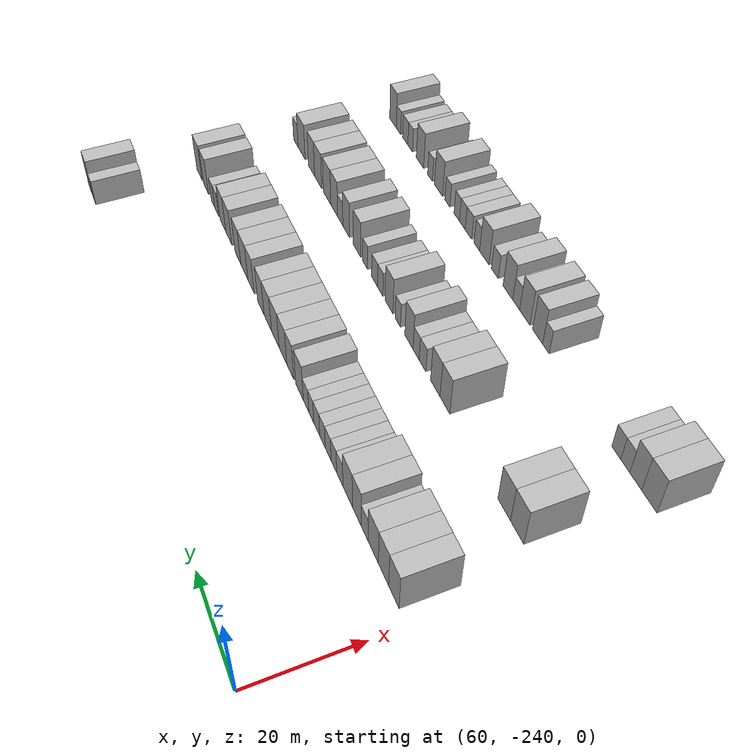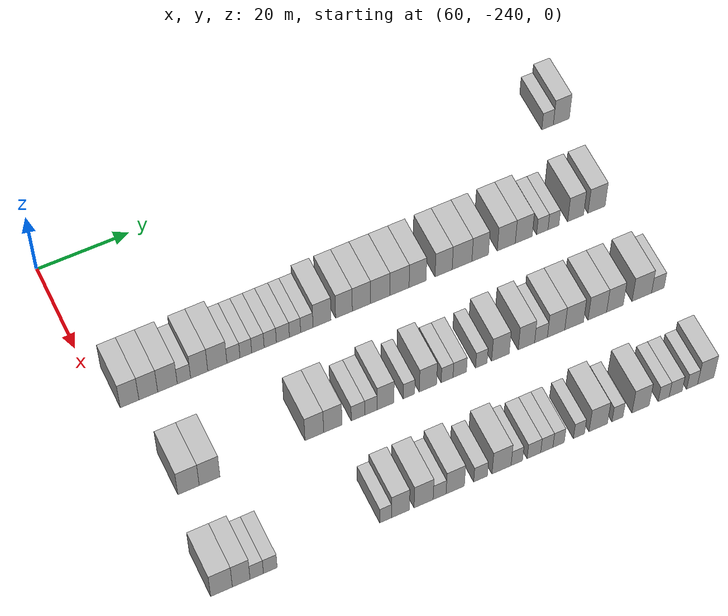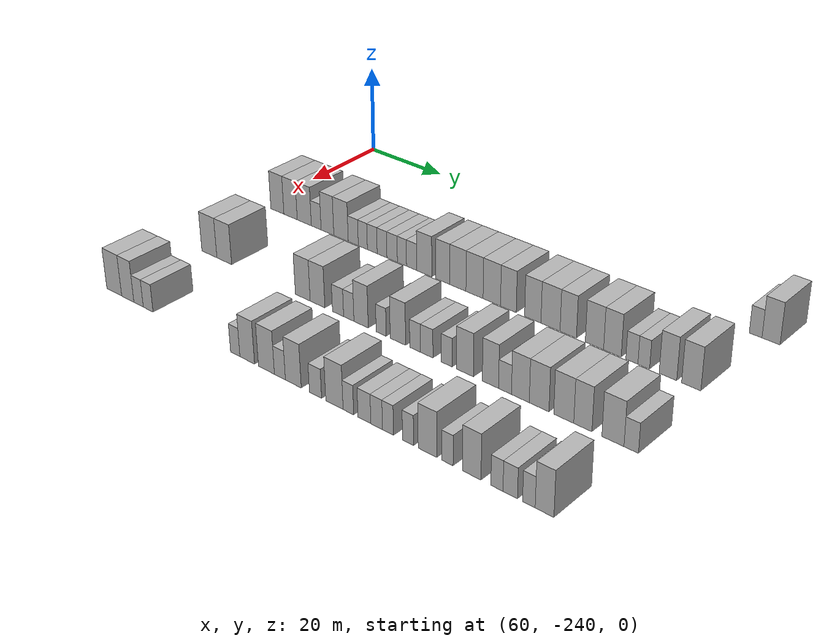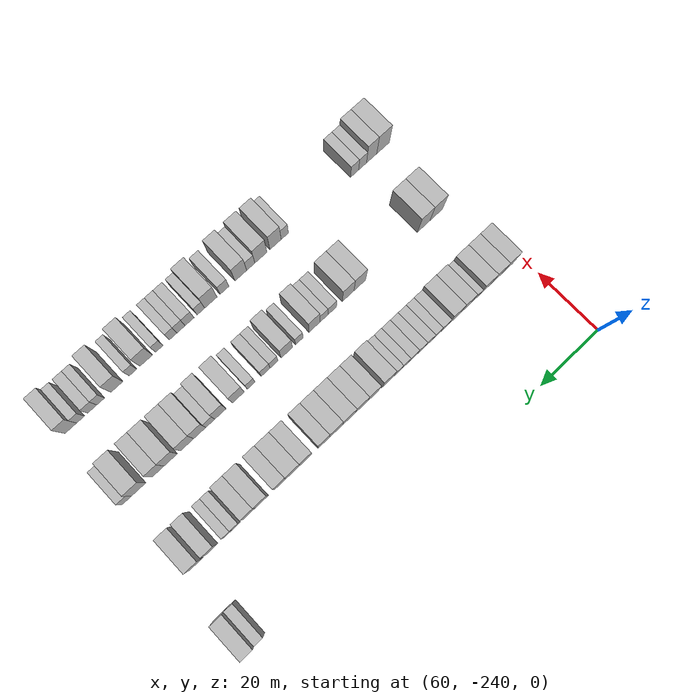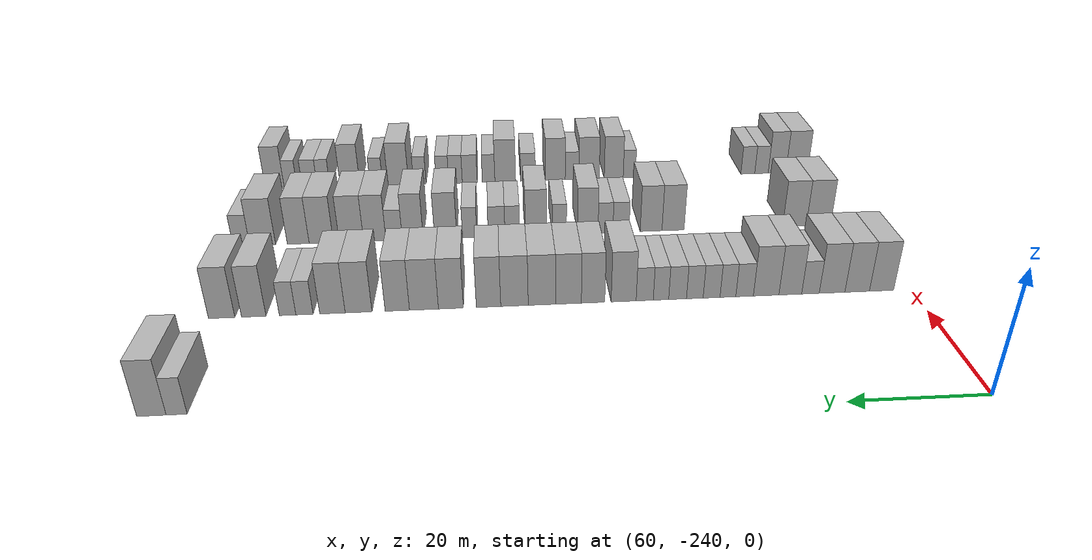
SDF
<sdf version="1.6">
 <world name="default">
  <model name="building_441">
   <static>1</static>
   <pose>69.0000 -131.8453 0 0.000000 0.000000 0.000000</pose>
   <link name="link">
    <pose>0 0 3.00 0 0 0</pose>
    <collision name="collision"><geometry><box><size>10.0000 2.6734 6.0000</size></box></geometry></collision>
    <visual name="visual">
     <cast_shadows>0</cast_shadows>
     <geometry><box><size>10.0000 2.6734 6.0000</size></box></geometry>
     <material>
      <script>
       <uri>model://HANNAS_wall/materials/scripts</uri>
       <uri>model://HANNAS_wall/materials/textures</uri>
       <name>vrc/HANNAS_wall</name>
      </script>
     </material>
    </visual>
   </link>
  </model>
  <model name="building_442">
   <static>1</static>
   <pose>69.0000 -128.6411 0 0.000000 0.000000 0.000000</pose>
   <link name="link">
    <pose>0 0 4.50 0 0 0</pose>
    <collision name="collision"><geometry><box><size>10.0000 3.7351 9.0000</size></box></geometry></collision>
    <visual name="visual">
     <cast_shadows>0</cast_shadows>
     <geometry><box><size>10.0000 3.7351 9.0000</size></box></geometry>
     <material>
      <script>
       <uri>model://HANNAS_wall/materials/scripts</uri>
       <uri>model://HANNAS_wall/materials/textures</uri>
       <name>vrc/HANNAS_wall</name>
      </script>
     </material>
    </visual>
   </link>
  </model>
  <model name="building_607">
   <static>1</static>
   <pose>91.0000 -235.0657 0 0.000000 0.000000 0.000000</pose>
   <link name="link">
    <pose>0 0 4.50 0 0 0</pose>
    <collision name="collision"><geometry><box><size>10.0000 3.9726 9.0000</size></box></geometry></collision>
    <visual name="visual">
     <cast_shadows>0</cast_shadows>
     <geometry><box><size>10.0000 3.9726 9.0000</size></box></geometry>
     <material>
      <script>
       <uri>model://HANNAS_wall/materials/scripts</uri>
       <uri>model://HANNAS_wall/materials/textures</uri>
       <name>vrc/HANNAS_wall</name>
      </script>
     </material>
    </visual>
   </link>
  </model>
  <model name="building_608">
   <static>1</static>
   <pose>91.0000 -231.0816 0 0.000000 0.000000 0.000000</pose>
   <link name="link">
    <pose>0 0 4.50 0 0 0</pose>
    <collision name="collision"><geometry><box><size>10.0000 3.9954 9.0000</size></box></geometry></collision>
    <visual name="visual">
     <cast_shadows>0</cast_shadows>
     <geometry><box><size>10.0000 3.9954 9.0000</size></box></geometry>
     <material>
      <script>
       <uri>model://HANNAS_wall/materials/scripts</uri>
       <uri>model://HANNAS_wall/materials/textures</uri>
       <name>vrc/HANNAS_wall</name>
      </script>
     </material>
    </visual>
   </link>
  </model>
  <model name="building_609">
   <static>1</static>
   <pose>91.0000 -226.9989 0 0.000000 0.000000 0.000000</pose>
   <link name="link">
    <pose>0 0 4.50 0 0 0</pose>
    <collision name="collision"><geometry><box><size>10.0000 4.1700 9.0000</size></box></geometry></collision>
    <visual name="visual">
     <cast_shadows>0</cast_shadows>
     <geometry><box><size>10.0000 4.1700 9.0000</size></box></geometry>
     <material>
      <script>
       <uri>model://HANNAS_wall/materials/scripts</uri>
       <uri>model://HANNAS_wall/materials/textures</uri>
       <name>vrc/HANNAS_wall</name>
      </script>
     </material>
    </visual>
   </link>
  </model>
  <model name="building_610">
   <static>1</static>
   <pose>91.0000 -223.4864 0 0.000000 0.000000 0.000000</pose>
   <link name="link">
    <pose>0 0 3.00 0 0 0</pose>
    <collision name="collision"><geometry><box><size>10.0000 2.8550 6.0000</size></box></geometry></collision>
    <visual name="visual">
     <cast_shadows>0</cast_shadows>
     <geometry><box><size>10.0000 2.8550 6.0000</size></box></geometry>
     <material>
      <script>
       <uri>model://HANNAS_wall/materials/scripts</uri>
       <uri>model://HANNAS_wall/materials/textures</uri>
       <name>vrc/HANNAS_wall</name>
      </script>
     </material>
    </visual>
   </link>
  </model>
  <model name="building_611">
   <static>1</static>
   <pose>91.0000 -220.2215 0 0.000000 0.000000 0.000000</pose>
   <link name="link">
    <pose>0 0 4.50 0 0 0</pose>
    <collision name="collision"><geometry><box><size>10.0000 3.6748 9.0000</size></box></geometry></collision>
    <visual name="visual">
     <cast_shadows>0</cast_shadows>
     <geometry><box><size>10.0000 3.6748 9.0000</size></box></geometry>
     <material>
      <script>
       <uri>model://HANNAS_wall/materials/scripts</uri>
       <uri>model://HANNAS_wall/materials/textures</uri>
       <name>vrc/HANNAS_wall</name>
      </script>
     </material>
    </visual>
   </link>
  </model>
  <model name="building_612">
   <static>1</static>
   <pose>91.0000 -216.3267 0 0.000000 0.000000 0.000000</pose>
   <link name="link">
    <pose>0 0 4.50 0 0 0</pose>
    <collision name="collision"><geometry><box><size>10.0000 4.1147 9.0000</size></box></geometry></collision>
    <visual name="visual">
     <cast_shadows>0</cast_shadows>
     <geometry><box><size>10.0000 4.1147 9.0000</size></box></geometry>
     <material>
      <script>
       <uri>model://HANNAS_wall/materials/scripts</uri>
       <uri>model://HANNAS_wall/materials/textures</uri>
       <name>vrc/HANNAS_wall</name>
      </script>
     </material>
    </visual>
   </link>
  </model>
  <model name="building_613">
   <static>1</static>
   <pose>91.0000 -212.8610 0 0.000000 0.000000 0.000000</pose>
   <link name="link">
    <pose>0 0 3.00 0 0 0</pose>
    <collision name="collision"><geometry><box><size>10.0000 2.8169 6.0000</size></box></geometry></collision>
    <visual name="visual">
     <cast_shadows>0</cast_shadows>
     <geometry><box><size>10.0000 2.8169 6.0000</size></box></geometry>
     <material>
      <script>
       <uri>model://HANNAS_wall/materials/scripts</uri>
       <uri>model://HANNAS_wall/materials/textures</uri>
       <name>vrc/HANNAS_wall</name>
      </script>
     </material>
    </visual>
   </link>
  </model>
  <model name="building_614">
   <static>1</static>
   <pose>91.0000 -210.1880 0 0.000000 0.000000 0.000000</pose>
   <link name="link">
    <pose>0 0 3.00 0 0 0</pose>
    <collision name="collision"><geometry><box><size>10.0000 2.5291 6.0000</size></box></geometry></collision>
    <visual name="visual">
     <cast_shadows>0</cast_shadows>
     <geometry><box><size>10.0000 2.5291 6.0000</size></box></geometry>
     <material>
      <script>
       <uri>model://HANNAS_wall/materials/scripts</uri>
       <uri>model://HANNAS_wall/materials/textures</uri>
       <name>vrc/HANNAS_wall</name>
      </script>
     </material>
    </visual>
   </link>
  </model>
  <model name="building_615">
   <static>1</static>
   <pose>91.0000 -207.5753 0 0.000000 0.000000 0.000000</pose>
   <link name="link">
    <pose>0 0 3.00 0 0 0</pose>
    <collision name="collision"><geometry><box><size>10.0000 2.6962 6.0000</size></box></geometry></collision>
    <visual name="visual">
     <cast_shadows>0</cast_shadows>
     <geometry><box><size>10.0000 2.6962 6.0000</size></box></geometry>
     <material>
      <script>
       <uri>model://HANNAS_wall/materials/scripts</uri>
       <uri>model://HANNAS_wall/materials/textures</uri>
       <name>vrc/HANNAS_wall</name>
      </script>
     </material>
    </visual>
   </link>
  </model>
  <model name="building_616">
   <static>1</static>
   <pose>91.0000 -204.9009 0 0.000000 0.000000 0.000000</pose>
   <link name="link">
    <pose>0 0 3.00 0 0 0</pose>
    <collision name="collision"><geometry><box><size>10.0000 2.6526 6.0000</size></box></geometry></collision>
    <visual name="visual">
     <cast_shadows>0</cast_shadows>
     <geometry><box><size>10.0000 2.6526 6.0000</size></box></geometry>
     <material>
      <script>
       <uri>model://HANNAS_wall/materials/scripts</uri>
       <uri>model://HANNAS_wall/materials/textures</uri>
       <name>vrc/HANNAS_wall</name>
      </script>
     </material>
    </visual>
   </link>
  </model>
  <model name="building_617">
   <static>1</static>
   <pose>91.0000 -202.1593 0 0.000000 0.000000 0.000000</pose>
   <link name="link">
    <pose>0 0 3.00 0 0 0</pose>
    <collision name="collision"><geometry><box><size>10.0000 2.8307 6.0000</size></box></geometry></collision>
    <visual name="visual">
     <cast_shadows>0</cast_shadows>
     <geometry><box><size>10.0000 2.8307 6.0000</size></box></geometry>
     <material>
      <script>
       <uri>model://HANNAS_wall/materials/scripts</uri>
       <uri>model://HANNAS_wall/materials/textures</uri>
       <name>vrc/HANNAS_wall</name>
      </script>
     </material>
    </visual>
   </link>
  </model>
  <model name="building_618">
   <static>1</static>
   <pose>91.0000 -199.5231 0 0.000000 0.000000 0.000000</pose>
   <link name="link">
    <pose>0 0 3.00 0 0 0</pose>
    <collision name="collision"><geometry><box><size>10.0000 2.4417 6.0000</size></box></geometry></collision>
    <visual name="visual">
     <cast_shadows>0</cast_shadows>
     <geometry><box><size>10.0000 2.4417 6.0000</size></box></geometry>
     <material>
      <script>
       <uri>model://HANNAS_wall/materials/scripts</uri>
       <uri>model://HANNAS_wall/materials/textures</uri>
       <name>vrc/HANNAS_wall</name>
      </script>
     </material>
    </visual>
   </link>
  </model>
  <model name="building_619">
   <static>1</static>
   <pose>91.0000 -196.9463 0 0.000000 0.000000 0.000000</pose>
   <link name="link">
    <pose>0 0 3.00 0 0 0</pose>
    <collision name="collision"><geometry><box><size>10.0000 2.7120 6.0000</size></box></geometry></collision>
    <visual name="visual">
     <cast_shadows>0</cast_shadows>
     <geometry><box><size>10.0000 2.7120 6.0000</size></box></geometry>
     <material>
      <script>
       <uri>model://HANNAS_wall/materials/scripts</uri>
       <uri>model://HANNAS_wall/materials/textures</uri>
       <name>vrc/HANNAS_wall</name>
      </script>
     </material>
    </visual>
   </link>
  </model>
  <model name="building_620">
   <static>1</static>
   <pose>91.0000 -193.6202 0 0.000000 0.000000 0.000000</pose>
   <link name="link">
    <pose>0 0 4.50 0 0 0</pose>
    <collision name="collision"><geometry><box><size>10.0000 3.9400 9.0000</size></box></geometry></collision>
    <visual name="visual">
     <cast_shadows>0</cast_shadows>
     <geometry><box><size>10.0000 3.9400 9.0000</size></box></geometry>
     <material>
      <script>
       <uri>model://HANNAS_wall/materials/scripts</uri>
       <uri>model://HANNAS_wall/materials/textures</uri>
       <name>vrc/HANNAS_wall</name>
      </script>
     </material>
    </visual>
   </link>
  </model>
  <model name="building_621">
   <static>1</static>
   <pose>91.0000 -188.8131 0 0.000000 0.000000 0.000000</pose>
   <link name="link">
    <pose>0 0 4.50 0 0 0</pose>
    <collision name="collision"><geometry><box><size>10.0000 3.6743 9.0000</size></box></geometry></collision>
    <visual name="visual">
     <cast_shadows>0</cast_shadows>
     <geometry><box><size>10.0000 3.6743 9.0000</size></box></geometry>
     <material>
      <script>
       <uri>model://HANNAS_wall/materials/scripts</uri>
       <uri>model://HANNAS_wall/materials/textures</uri>
       <name>vrc/HANNAS_wall</name>
      </script>
     </material>
    </visual>
   </link>
  </model>
  <model name="building_622">
   <static>1</static>
   <pose>91.0000 -184.9617 0 0.000000 0.000000 0.000000</pose>
   <link name="link">
    <pose>0 0 4.50 0 0 0</pose>
    <collision name="collision"><geometry><box><size>10.0000 4.0285 9.0000</size></box></geometry></collision>
    <visual name="visual">
     <cast_shadows>0</cast_shadows>
     <geometry><box><size>10.0000 4.0285 9.0000</size></box></geometry>
     <material>
      <script>
       <uri>model://HANNAS_wall/materials/scripts</uri>
       <uri>model://HANNAS_wall/materials/textures</uri>
       <name>vrc/HANNAS_wall</name>
      </script>
     </material>
    </visual>
   </link>
  </model>
  <model name="building_623">
   <static>1</static>
   <pose>91.0000 -180.8147 0 0.000000 0.000000 0.000000</pose>
   <link name="link">
    <pose>0 0 4.50 0 0 0</pose>
    <collision name="collision"><geometry><box><size>10.0000 4.2655 9.0000</size></box></geometry></collision>
    <visual name="visual">
     <cast_shadows>0</cast_shadows>
     <geometry><box><size>10.0000 4.2655 9.0000</size></box></geometry>
     <material>
      <script>
       <uri>model://HANNAS_wall/materials/scripts</uri>
       <uri>model://HANNAS_wall/materials/textures</uri>
       <name>vrc/HANNAS_wall</name>
      </script>
     </material>
    </visual>
   </link>
  </model>
  <model name="building_624">
   <static>1</static>
   <pose>91.0000 -176.5502 0 0.000000 0.000000 0.000000</pose>
   <link name="link">
    <pose>0 0 4.50 0 0 0</pose>
    <collision name="collision"><geometry><box><size>10.0000 4.2636 9.0000</size></box></geometry></collision>
    <visual name="visual">
     <cast_shadows>0</cast_shadows>
     <geometry><box><size>10.0000 4.2636 9.0000</size></box></geometry>
     <material>
      <script>
       <uri>model://HANNAS_wall/materials/scripts</uri>
       <uri>model://HANNAS_wall/materials/textures</uri>
       <name>vrc/HANNAS_wall</name>
      </script>
     </material>
    </visual>
   </link>
  </model>
  <model name="building_625">
   <static>1</static>
   <pose>91.0000 -172.5279 0 0.000000 0.000000 0.000000</pose>
   <link name="link">
    <pose>0 0 4.50 0 0 0</pose>
    <collision name="collision"><geometry><box><size>10.0000 3.7810 9.0000</size></box></geometry></collision>
    <visual name="visual">
     <cast_shadows>0</cast_shadows>
     <geometry><box><size>10.0000 3.7810 9.0000</size></box></geometry>
     <material>
      <script>
       <uri>model://HANNAS_wall/materials/scripts</uri>
       <uri>model://HANNAS_wall/materials/textures</uri>
       <name>vrc/HANNAS_wall</name>
      </script>
     </material>
    </visual>
   </link>
  </model>
  <model name="building_626">
   <static>1</static>
   <pose>91.0000 -166.7203 0 0.000000 0.000000 0.000000</pose>
   <link name="link">
    <pose>0 0 4.50 0 0 0</pose>
    <collision name="collision"><geometry><box><size>10.0000 3.8340 9.0000</size></box></geometry></collision>
    <visual name="visual">
     <cast_shadows>0</cast_shadows>
     <geometry><box><size>10.0000 3.8340 9.0000</size></box></geometry>
     <material>
      <script>
       <uri>model://HANNAS_wall/materials/scripts</uri>
       <uri>model://HANNAS_wall/materials/textures</uri>
       <name>vrc/HANNAS_wall</name>
      </script>
     </material>
    </visual>
   </link>
  </model>
  <model name="building_627">
   <static>1</static>
   <pose>91.0000 -162.5892 0 0.000000 0.000000 0.000000</pose>
   <link name="link">
    <pose>0 0 4.50 0 0 0</pose>
    <collision name="collision"><geometry><box><size>10.0000 4.4282 9.0000</size></box></geometry></collision>
    <visual name="visual">
     <cast_shadows>0</cast_shadows>
     <geometry><box><size>10.0000 4.4282 9.0000</size></box></geometry>
     <material>
      <script>
       <uri>model://HANNAS_wall/materials/scripts</uri>
       <uri>model://HANNAS_wall/materials/textures</uri>
       <name>vrc/HANNAS_wall</name>
      </script>
     </material>
    </visual>
   </link>
  </model>
  <model name="building_628">
   <static>1</static>
   <pose>91.0000 -158.5167 0 0.000000 0.000000 0.000000</pose>
   <link name="link">
    <pose>0 0 4.50 0 0 0</pose>
    <collision name="collision"><geometry><box><size>10.0000 3.7170 9.0000</size></box></geometry></collision>
    <visual name="visual">
     <cast_shadows>0</cast_shadows>
     <geometry><box><size>10.0000 3.7170 9.0000</size></box></geometry>
     <material>
      <script>
       <uri>model://HANNAS_wall/materials/scripts</uri>
       <uri>model://HANNAS_wall/materials/textures</uri>
       <name>vrc/HANNAS_wall</name>
      </script>
     </material>
    </visual>
   </link>
  </model>
  <model name="building_629">
   <static>1</static>
   <pose>91.0000 -152.6219 0 0.000000 0.000000 0.000000</pose>
   <link name="link">
    <pose>0 0 4.50 0 0 0</pose>
    <collision name="collision"><geometry><box><size>10.0000 4.0726 9.0000</size></box></geometry></collision>
    <visual name="visual">
     <cast_shadows>0</cast_shadows>
     <geometry><box><size>10.0000 4.0726 9.0000</size></box></geometry>
     <material>
      <script>
       <uri>model://HANNAS_wall/materials/scripts</uri>
       <uri>model://HANNAS_wall/materials/textures</uri>
       <name>vrc/HANNAS_wall</name>
      </script>
     </material>
    </visual>
   </link>
  </model>
  <model name="building_630">
   <static>1</static>
   <pose>91.0000 -148.6624 0 0.000000 0.000000 0.000000</pose>
   <link name="link">
    <pose>0 0 4.50 0 0 0</pose>
    <collision name="collision"><geometry><box><size>10.0000 3.8463 9.0000</size></box></geometry></collision>
    <visual name="visual">
     <cast_shadows>0</cast_shadows>
     <geometry><box><size>10.0000 3.8463 9.0000</size></box></geometry>
     <material>
      <script>
       <uri>model://HANNAS_wall/materials/scripts</uri>
       <uri>model://HANNAS_wall/materials/textures</uri>
       <name>vrc/HANNAS_wall</name>
      </script>
     </material>
    </visual>
   </link>
  </model>
  <model name="building_631">
   <static>1</static>
   <pose>91.0000 -144.4418 0 0.000000 0.000000 0.000000</pose>
   <link name="link">
    <pose>0 0 3.00 0 0 0</pose>
    <collision name="collision"><geometry><box><size>10.0000 2.5950 6.0000</size></box></geometry></collision>
    <visual name="visual">
     <cast_shadows>0</cast_shadows>
     <geometry><box><size>10.0000 2.5950 6.0000</size></box></geometry>
     <material>
      <script>
       <uri>model://HANNAS_wall/materials/scripts</uri>
       <uri>model://HANNAS_wall/materials/textures</uri>
       <name>vrc/HANNAS_wall</name>
      </script>
     </material>
    </visual>
   </link>
  </model>
  <model name="building_632">
   <static>1</static>
   <pose>91.0000 -141.9015 0 0.000000 0.000000 0.000000</pose>
   <link name="link">
    <pose>0 0 3.00 0 0 0</pose>
    <collision name="collision"><geometry><box><size>10.0000 2.4856 6.0000</size></box></geometry></collision>
    <visual name="visual">
     <cast_shadows>0</cast_shadows>
     <geometry><box><size>10.0000 2.4856 6.0000</size></box></geometry>
     <material>
      <script>
       <uri>model://HANNAS_wall/materials/scripts</uri>
       <uri>model://HANNAS_wall/materials/textures</uri>
       <name>vrc/HANNAS_wall</name>
      </script>
     </material>
    </visual>
   </link>
  </model>
  <model name="building_633">
   <static>1</static>
   <pose>91.0000 -136.8309 0 0.000000 0.000000 0.000000</pose>
   <link name="link">
    <pose>0 0 4.50 0 0 0</pose>
    <collision name="collision"><geometry><box><size>10.0000 3.6557 9.0000</size></box></geometry></collision>
    <visual name="visual">
     <cast_shadows>0</cast_shadows>
     <geometry><box><size>10.0000 3.6557 9.0000</size></box></geometry>
     <material>
      <script>
       <uri>model://HANNAS_wall/materials/scripts</uri>
       <uri>model://HANNAS_wall/materials/textures</uri>
       <name>vrc/HANNAS_wall</name>
      </script>
     </material>
    </visual>
   </link>
  </model>
  <model name="building_634">
   <static>1</static>
   <pose>91.0000 -132.0382 0 0.000000 0.000000 0.000000</pose>
   <link name="link">
    <pose>0 0 4.50 0 0 0</pose>
    <collision name="collision"><geometry><box><size>10.0000 3.9297 9.0000</size></box></geometry></collision>
    <visual name="visual">
     <cast_shadows>0</cast_shadows>
     <geometry><box><size>10.0000 3.9297 9.0000</size></box></geometry>
     <material>
      <script>
       <uri>model://HANNAS_wall/materials/scripts</uri>
       <uri>model://HANNAS_wall/materials/textures</uri>
       <name>vrc/HANNAS_wall</name>
      </script>
     </material>
    </visual>
   </link>
  </model>
  <model name="building_793">
   <static>1</static>
   <pose>113.0000 -232.1284 0 0.000000 0.000000 0.000000</pose>
   <link name="link">
    <pose>0 0 4.50 0 0 0</pose>
    <collision name="collision"><geometry><box><size>10.0000 4.4821 9.0000</size></box></geometry></collision>
    <visual name="visual">
     <cast_shadows>0</cast_shadows>
     <geometry><box><size>10.0000 4.4821 9.0000</size></box></geometry>
     <material>
      <script>
       <uri>model://HANNAS_wall/materials/scripts</uri>
       <uri>model://HANNAS_wall/materials/textures</uri>
       <name>vrc/HANNAS_wall</name>
      </script>
     </material>
    </visual>
   </link>
  </model>
  <model name="building_794">
   <static>1</static>
   <pose>113.0000 -227.7060 0 0.000000 0.000000 0.000000</pose>
   <link name="link">
    <pose>0 0 4.50 0 0 0</pose>
    <collision name="collision"><geometry><box><size>10.0000 4.3627 9.0000</size></box></geometry></collision>
    <visual name="visual">
     <cast_shadows>0</cast_shadows>
     <geometry><box><size>10.0000 4.3627 9.0000</size></box></geometry>
     <material>
      <script>
       <uri>model://HANNAS_wall/materials/scripts</uri>
       <uri>model://HANNAS_wall/materials/textures</uri>
       <name>vrc/HANNAS_wall</name>
      </script>
     </material>
    </visual>
   </link>
  </model>
  <model name="building_795">
   <static>1</static>
   <pose>113.0000 -205.5315 0 0.000000 0.000000 0.000000</pose>
   <link name="link">
    <pose>0 0 4.50 0 0 0</pose>
    <collision name="collision"><geometry><box><size>10.0000 3.9954 9.0000</size></box></geometry></collision>
    <visual name="visual">
     <cast_shadows>0</cast_shadows>
     <geometry><box><size>10.0000 3.9954 9.0000</size></box></geometry>
     <material>
      <script>
       <uri>model://HANNAS_wall/materials/scripts</uri>
       <uri>model://HANNAS_wall/materials/textures</uri>
       <name>vrc/HANNAS_wall</name>
      </script>
     </material>
    </visual>
   </link>
  </model>
  <model name="building_796">
   <static>1</static>
   <pose>113.0000 -201.5704 0 0.000000 0.000000 0.000000</pose>
   <link name="link">
    <pose>0 0 4.50 0 0 0</pose>
    <collision name="collision"><geometry><box><size>10.0000 3.9270 9.0000</size></box></geometry></collision>
    <visual name="visual">
     <cast_shadows>0</cast_shadows>
     <geometry><box><size>10.0000 3.9270 9.0000</size></box></geometry>
     <material>
      <script>
       <uri>model://HANNAS_wall/materials/scripts</uri>
       <uri>model://HANNAS_wall/materials/textures</uri>
       <name>vrc/HANNAS_wall</name>
      </script>
     </material>
    </visual>
   </link>
  </model>
  <model name="building_797">
   <static>1</static>
   <pose>113.0000 -196.1571 0 0.000000 0.000000 0.000000</pose>
   <link name="link">
    <pose>0 0 3.00 0 0 0</pose>
    <collision name="collision"><geometry><box><size>10.0000 2.8995 6.0000</size></box></geometry></collision>
    <visual name="visual">
     <cast_shadows>0</cast_shadows>
     <geometry><box><size>10.0000 2.8995 6.0000</size></box></geometry>
     <material>
      <script>
       <uri>model://HANNAS_wall/materials/scripts</uri>
       <uri>model://HANNAS_wall/materials/textures</uri>
       <name>vrc/HANNAS_wall</name>
      </script>
     </material>
    </visual>
   </link>
  </model>
  <model name="building_798">
   <static>1</static>
   <pose>113.0000 -193.3742 0 0.000000 0.000000 0.000000</pose>
   <link name="link">
    <pose>0 0 3.00 0 0 0</pose>
    <collision name="collision"><geometry><box><size>10.0000 2.6664 6.0000</size></box></geometry></collision>
    <visual name="visual">
     <cast_shadows>0</cast_shadows>
     <geometry><box><size>10.0000 2.6664 6.0000</size></box></geometry>
     <material>
      <script>
       <uri>model://HANNAS_wall/materials/scripts</uri>
       <uri>model://HANNAS_wall/materials/textures</uri>
       <name>vrc/HANNAS_wall</name>
      </script>
     </material>
    </visual>
   </link>
  </model>
  <model name="building_799">
   <static>1</static>
   <pose>113.0000 -190.2210 0 0.000000 0.000000 0.000000</pose>
   <link name="link">
    <pose>0 0 4.50 0 0 0</pose>
    <collision name="collision"><geometry><box><size>10.0000 3.6399 9.0000</size></box></geometry></collision>
    <visual name="visual">
     <cast_shadows>0</cast_shadows>
     <geometry><box><size>10.0000 3.6399 9.0000</size></box></geometry>
     <material>
      <script>
       <uri>model://HANNAS_wall/materials/scripts</uri>
       <uri>model://HANNAS_wall/materials/textures</uri>
       <name>vrc/HANNAS_wall</name>
      </script>
     </material>
    </visual>
   </link>
  </model>
  <model name="building_800">
   <static>1</static>
   <pose>113.0000 -185.1498 0 0.000000 0.000000 0.000000</pose>
   <link name="link">
    <pose>0 0 3.00 0 0 0</pose>
    <collision name="collision"><geometry><box><size>10.0000 2.5026 6.0000</size></box></geometry></collision>
    <visual name="visual">
     <cast_shadows>0</cast_shadows>
     <geometry><box><size>10.0000 2.5026 6.0000</size></box></geometry>
     <material>
      <script>
       <uri>model://HANNAS_wall/materials/scripts</uri>
       <uri>model://HANNAS_wall/materials/textures</uri>
       <name>vrc/HANNAS_wall</name>
      </script>
     </material>
    </visual>
   </link>
  </model>
  <model name="building_801">
   <static>1</static>
   <pose>113.0000 -181.0096 0 0.000000 0.000000 0.000000</pose>
   <link name="link">
    <pose>0 0 4.50 0 0 0</pose>
    <collision name="collision"><geometry><box><size>10.0000 3.7778 9.0000</size></box></geometry></collision>
    <visual name="visual">
     <cast_shadows>0</cast_shadows>
     <geometry><box><size>10.0000 3.7778 9.0000</size></box></geometry>
     <material>
      <script>
       <uri>model://HANNAS_wall/materials/scripts</uri>
       <uri>model://HANNAS_wall/materials/textures</uri>
       <name>vrc/HANNAS_wall</name>
      </script>
     </material>
    </visual>
   </link>
  </model>
  <model name="building_802">
   <static>1</static>
   <pose>113.0000 -176.8181 0 0.000000 0.000000 0.000000</pose>
   <link name="link">
    <pose>0 0 3.00 0 0 0</pose>
    <collision name="collision"><geometry><box><size>10.0000 2.6053 6.0000</size></box></geometry></collision>
    <visual name="visual">
     <cast_shadows>0</cast_shadows>
     <geometry><box><size>10.0000 2.6053 6.0000</size></box></geometry>
     <material>
      <script>
       <uri>model://HANNAS_wall/materials/scripts</uri>
       <uri>model://HANNAS_wall/materials/textures</uri>
       <name>vrc/HANNAS_wall</name>
      </script>
     </material>
    </visual>
   </link>
  </model>
  <model name="building_803">
   <static>1</static>
   <pose>113.0000 -174.0438 0 0.000000 0.000000 0.000000</pose>
   <link name="link">
    <pose>0 0 3.00 0 0 0</pose>
    <collision name="collision"><geometry><box><size>10.0000 2.9434 6.0000</size></box></geometry></collision>
    <visual name="visual">
     <cast_shadows>0</cast_shadows>
     <geometry><box><size>10.0000 2.9434 6.0000</size></box></geometry>
     <material>
      <script>
       <uri>model://HANNAS_wall/materials/scripts</uri>
       <uri>model://HANNAS_wall/materials/textures</uri>
       <name>vrc/HANNAS_wall</name>
      </script>
     </material>
    </visual>
   </link>
  </model>
  <model name="building_804">
   <static>1</static>
   <pose>113.0000 -169.3065 0 0.000000 0.000000 0.000000</pose>
   <link name="link">
    <pose>0 0 3.00 0 0 0</pose>
    <collision name="collision"><geometry><box><size>10.0000 2.5311 6.0000</size></box></geometry></collision>
    <visual name="visual">
     <cast_shadows>0</cast_shadows>
     <geometry><box><size>10.0000 2.5311 6.0000</size></box></geometry>
     <material>
      <script>
       <uri>model://HANNAS_wall/materials/scripts</uri>
       <uri>model://HANNAS_wall/materials/textures</uri>
       <name>vrc/HANNAS_wall</name>
      </script>
     </material>
    </visual>
   </link>
  </model>
  <model name="building_805">
   <static>1</static>
   <pose>113.0000 -165.0982 0 0.000000 0.000000 0.000000</pose>
   <link name="link">
    <pose>0 0 4.50 0 0 0</pose>
    <collision name="collision"><geometry><box><size>10.0000 3.8855 9.0000</size></box></geometry></collision>
    <visual name="visual">
     <cast_shadows>0</cast_shadows>
     <geometry><box><size>10.0000 3.8855 9.0000</size></box></geometry>
     <material>
      <script>
       <uri>model://HANNAS_wall/materials/scripts</uri>
       <uri>model://HANNAS_wall/materials/textures</uri>
       <name>vrc/HANNAS_wall</name>
      </script>
     </material>
    </visual>
   </link>
  </model>
  <model name="building_806">
   <static>1</static>
   <pose>113.0000 -159.3417 0 0.000000 0.000000 0.000000</pose>
   <link name="link">
    <pose>0 0 4.50 0 0 0</pose>
    <collision name="collision"><geometry><box><size>10.0000 3.6275 9.0000</size></box></geometry></collision>
    <visual name="visual">
     <cast_shadows>0</cast_shadows>
     <geometry><box><size>10.0000 3.6275 9.0000</size></box></geometry>
     <material>
      <script>
       <uri>model://HANNAS_wall/materials/scripts</uri>
       <uri>model://HANNAS_wall/materials/textures</uri>
       <name>vrc/HANNAS_wall</name>
      </script>
     </material>
    </visual>
   </link>
  </model>
  <model name="building_807">
   <static>1</static>
   <pose>113.0000 -156.1009 0 0.000000 0.000000 0.000000</pose>
   <link name="link">
    <pose>0 0 3.00 0 0 0</pose>
    <collision name="collision"><geometry><box><size>10.0000 2.8543 6.0000</size></box></geometry></collision>
    <visual name="visual">
     <cast_shadows>0</cast_shadows>
     <geometry><box><size>10.0000 2.8543 6.0000</size></box></geometry>
     <material>
      <script>
       <uri>model://HANNAS_wall/materials/scripts</uri>
       <uri>model://HANNAS_wall/materials/textures</uri>
       <name>vrc/HANNAS_wall</name>
      </script>
     </material>
    </visual>
   </link>
  </model>
  <model name="building_808">
   <static>1</static>
   <pose>113.0000 -152.7396 0 0.000000 0.000000 0.000000</pose>
   <link name="link">
    <pose>0 0 4.50 0 0 0</pose>
    <collision name="collision"><geometry><box><size>10.0000 3.8683 9.0000</size></box></geometry></collision>
    <visual name="visual">
     <cast_shadows>0</cast_shadows>
     <geometry><box><size>10.0000 3.8683 9.0000</size></box></geometry>
     <material>
      <script>
       <uri>model://HANNAS_wall/materials/scripts</uri>
       <uri>model://HANNAS_wall/materials/textures</uri>
       <name>vrc/HANNAS_wall</name>
      </script>
     </material>
    </visual>
   </link>
  </model>
  <model name="building_809">
   <static>1</static>
   <pose>113.0000 -148.6998 0 0.000000 0.000000 0.000000</pose>
   <link name="link">
    <pose>0 0 4.50 0 0 0</pose>
    <collision name="collision"><geometry><box><size>10.0000 4.2113 9.0000</size></box></geometry></collision>
    <visual name="visual">
     <cast_shadows>0</cast_shadows>
     <geometry><box><size>10.0000 4.2113 9.0000</size></box></geometry>
     <material>
      <script>
       <uri>model://HANNAS_wall/materials/scripts</uri>
       <uri>model://HANNAS_wall/materials/textures</uri>
       <name>vrc/HANNAS_wall</name>
      </script>
     </material>
    </visual>
   </link>
  </model>
  <model name="building_810">
   <static>1</static>
   <pose>113.0000 -143.5020 0 0.000000 0.000000 0.000000</pose>
   <link name="link">
    <pose>0 0 4.50 0 0 0</pose>
    <collision name="collision"><geometry><box><size>10.0000 4.1844 9.0000</size></box></geometry></collision>
    <visual name="visual">
     <cast_shadows>0</cast_shadows>
     <geometry><box><size>10.0000 4.1844 9.0000</size></box></geometry>
     <material>
      <script>
       <uri>model://HANNAS_wall/materials/scripts</uri>
       <uri>model://HANNAS_wall/materials/textures</uri>
       <name>vrc/HANNAS_wall</name>
      </script>
     </material>
    </visual>
   </link>
  </model>
  <model name="building_811">
   <static>1</static>
   <pose>113.0000 -139.5384 0 0.000000 0.000000 0.000000</pose>
   <link name="link">
    <pose>0 0 4.50 0 0 0</pose>
    <collision name="collision"><geometry><box><size>10.0000 3.7428 9.0000</size></box></geometry></collision>
    <visual name="visual">
     <cast_shadows>0</cast_shadows>
     <geometry><box><size>10.0000 3.7428 9.0000</size></box></geometry>
     <material>
      <script>
       <uri>model://HANNAS_wall/materials/scripts</uri>
       <uri>model://HANNAS_wall/materials/textures</uri>
       <name>vrc/HANNAS_wall</name>
      </script>
     </material>
    </visual>
   </link>
  </model>
  <model name="building_812">
   <static>1</static>
   <pose>113.0000 -133.4582 0 0.000000 0.000000 0.000000</pose>
   <link name="link">
    <pose>0 0 4.50 0 0 0</pose>
    <collision name="collision"><geometry><box><size>10.0000 4.4176 9.0000</size></box></geometry></collision>
    <visual name="visual">
     <cast_shadows>0</cast_shadows>
     <geometry><box><size>10.0000 4.4176 9.0000</size></box></geometry>
     <material>
      <script>
       <uri>model://HANNAS_wall/materials/scripts</uri>
       <uri>model://HANNAS_wall/materials/textures</uri>
       <name>vrc/HANNAS_wall</name>
      </script>
     </material>
    </visual>
   </link>
  </model>
  <model name="building_813">
   <static>1</static>
   <pose>113.0000 -129.8263 0 0.000000 0.000000 0.000000</pose>
   <link name="link">
    <pose>0 0 3.00 0 0 0</pose>
    <collision name="collision"><geometry><box><size>10.0000 2.8462 6.0000</size></box></geometry></collision>
    <visual name="visual">
     <cast_shadows>0</cast_shadows>
     <geometry><box><size>10.0000 2.8462 6.0000</size></box></geometry>
     <material>
      <script>
       <uri>model://HANNAS_wall/materials/scripts</uri>
       <uri>model://HANNAS_wall/materials/textures</uri>
       <name>vrc/HANNAS_wall</name>
      </script>
     </material>
    </visual>
   </link>
  </model>
  <model name="building_969">
   <static>1</static>
   <pose>135.0000 -234.9643 0 0.000000 0.000000 0.000000</pose>
   <link name="link">
    <pose>0 0 4.50 0 0 0</pose>
    <collision name="collision"><geometry><box><size>10.0000 4.4794 9.0000</size></box></geometry></collision>
    <visual name="visual">
     <cast_shadows>0</cast_shadows>
     <geometry><box><size>10.0000 4.4794 9.0000</size></box></geometry>
     <material>
      <script>
       <uri>model://HANNAS_wall/materials/scripts</uri>
       <uri>model://HANNAS_wall/materials/textures</uri>
       <name>vrc/HANNAS_wall</name>
      </script>
     </material>
    </visual>
   </link>
  </model>
  <model name="building_970">
   <static>1</static>
   <pose>135.0000 -230.9047 0 0.000000 0.000000 0.000000</pose>
   <link name="link">
    <pose>0 0 4.50 0 0 0</pose>
    <collision name="collision"><geometry><box><size>10.0000 3.6397 9.0000</size></box></geometry></collision>
    <visual name="visual">
     <cast_shadows>0</cast_shadows>
     <geometry><box><size>10.0000 3.6397 9.0000</size></box></geometry>
     <material>
      <script>
       <uri>model://HANNAS_wall/materials/scripts</uri>
       <uri>model://HANNAS_wall/materials/textures</uri>
       <name>vrc/HANNAS_wall</name>
      </script>
     </material>
    </visual>
   </link>
  </model>
  <model name="building_971">
   <static>1</static>
   <pose>135.0000 -227.7066 0 0.000000 0.000000 0.000000</pose>
   <link name="link">
    <pose>0 0 3.00 0 0 0</pose>
    <collision name="collision"><geometry><box><size>10.0000 2.7566 6.0000</size></box></geometry></collision>
    <visual name="visual">
     <cast_shadows>0</cast_shadows>
     <geometry><box><size>10.0000 2.7566 6.0000</size></box></geometry>
     <material>
      <script>
       <uri>model://HANNAS_wall/materials/scripts</uri>
       <uri>model://HANNAS_wall/materials/textures</uri>
       <name>vrc/HANNAS_wall</name>
      </script>
     </material>
    </visual>
   </link>
  </model>
  <model name="building_972">
   <static>1</static>
   <pose>135.0000 -224.9058 0 0.000000 0.000000 0.000000</pose>
   <link name="link">
    <pose>0 0 3.00 0 0 0</pose>
    <collision name="collision"><geometry><box><size>10.0000 2.8451 6.0000</size></box></geometry></collision>
    <visual name="visual">
     <cast_shadows>0</cast_shadows>
     <geometry><box><size>10.0000 2.8451 6.0000</size></box></geometry>
     <material>
      <script>
       <uri>model://HANNAS_wall/materials/scripts</uri>
       <uri>model://HANNAS_wall/materials/textures</uri>
       <name>vrc/HANNAS_wall</name>
      </script>
     </material>
    </visual>
   </link>
  </model>
  <model name="building_973">
   <static>1</static>
   <pose>135.0000 -200.7832 0 0.000000 0.000000 0.000000</pose>
   <link name="link">
    <pose>0 0 3.00 0 0 0</pose>
    <collision name="collision"><geometry><box><size>10.0000 2.4667 6.0000</size></box></geometry></collision>
    <visual name="visual">
     <cast_shadows>0</cast_shadows>
     <geometry><box><size>10.0000 2.4667 6.0000</size></box></geometry>
     <material>
      <script>
       <uri>model://HANNAS_wall/materials/scripts</uri>
       <uri>model://HANNAS_wall/materials/textures</uri>
       <name>vrc/HANNAS_wall</name>
      </script>
     </material>
    </visual>
   </link>
  </model>
  <model name="building_974">
   <static>1</static>
   <pose>135.0000 -197.6420 0 0.000000 0.000000 0.000000</pose>
   <link name="link">
    <pose>0 0 4.50 0 0 0</pose>
    <collision name="collision"><geometry><box><size>10.0000 3.8156 9.0000</size></box></geometry></collision>
    <visual name="visual">
     <cast_shadows>0</cast_shadows>
     <geometry><box><size>10.0000 3.8156 9.0000</size></box></geometry>
     <material>
      <script>
       <uri>model://HANNAS_wall/materials/scripts</uri>
       <uri>model://HANNAS_wall/materials/textures</uri>
       <name>vrc/HANNAS_wall</name>
      </script>
     </material>
    </visual>
   </link>
  </model>
  <model name="building_975">
   <static>1</static>
   <pose>135.0000 -192.7022 0 0.000000 0.000000 0.000000</pose>
   <link name="link">
    <pose>0 0 4.50 0 0 0</pose>
    <collision name="collision"><geometry><box><size>10.0000 4.0640 9.0000</size></box></geometry></collision>
    <visual name="visual">
     <cast_shadows>0</cast_shadows>
     <geometry><box><size>10.0000 4.0640 9.0000</size></box></geometry>
     <material>
      <script>
       <uri>model://HANNAS_wall/materials/scripts</uri>
       <uri>model://HANNAS_wall/materials/textures</uri>
       <name>vrc/HANNAS_wall</name>
      </script>
     </material>
    </visual>
   </link>
  </model>
  <model name="building_976">
   <static>1</static>
   <pose>135.0000 -189.2933 0 0.000000 0.000000 0.000000</pose>
   <link name="link">
    <pose>0 0 3.00 0 0 0</pose>
    <collision name="collision"><geometry><box><size>10.0000 2.7538 6.0000</size></box></geometry></collision>
    <visual name="visual">
     <cast_shadows>0</cast_shadows>
     <geometry><box><size>10.0000 2.7538 6.0000</size></box></geometry>
     <material>
      <script>
       <uri>model://HANNAS_wall/materials/scripts</uri>
       <uri>model://HANNAS_wall/materials/textures</uri>
       <name>vrc/HANNAS_wall</name>
      </script>
     </material>
    </visual>
   </link>
  </model>
  <model name="building_977">
   <static>1</static>
   <pose>135.0000 -185.9557 0 0.000000 0.000000 0.000000</pose>
   <link name="link">
    <pose>0 0 4.50 0 0 0</pose>
    <collision name="collision"><geometry><box><size>10.0000 3.9214 9.0000</size></box></geometry></collision>
    <visual name="visual">
     <cast_shadows>0</cast_shadows>
     <geometry><box><size>10.0000 3.9214 9.0000</size></box></geometry>
     <material>
      <script>
       <uri>model://HANNAS_wall/materials/scripts</uri>
       <uri>model://HANNAS_wall/materials/textures</uri>
       <name>vrc/HANNAS_wall</name>
      </script>
     </material>
    </visual>
   </link>
  </model>
  <model name="building_978">
   <static>1</static>
   <pose>135.0000 -180.5253 0 0.000000 0.000000 0.000000</pose>
   <link name="link">
    <pose>0 0 3.00 0 0 0</pose>
    <collision name="collision"><geometry><box><size>10.0000 2.9393 6.0000</size></box></geometry></collision>
    <visual name="visual">
     <cast_shadows>0</cast_shadows>
     <geometry><box><size>10.0000 2.9393 6.0000</size></box></geometry>
     <material>
      <script>
       <uri>model://HANNAS_wall/materials/scripts</uri>
       <uri>model://HANNAS_wall/materials/textures</uri>
       <name>vrc/HANNAS_wall</name>
      </script>
     </material>
    </visual>
   </link>
  </model>
  <model name="building_979">
   <static>1</static>
   <pose>135.0000 -176.0015 0 0.000000 0.000000 0.000000</pose>
   <link name="link">
    <pose>0 0 4.50 0 0 0</pose>
    <collision name="collision"><geometry><box><size>10.0000 4.1084 9.0000</size></box></geometry></collision>
    <visual name="visual">
     <cast_shadows>0</cast_shadows>
     <geometry><box><size>10.0000 4.1084 9.0000</size></box></geometry>
     <material>
      <script>
       <uri>model://HANNAS_wall/materials/scripts</uri>
       <uri>model://HANNAS_wall/materials/textures</uri>
       <name>vrc/HANNAS_wall</name>
      </script>
     </material>
    </visual>
   </link>
  </model>
  <model name="building_980">
   <static>1</static>
   <pose>135.0000 -172.7061 0 0.000000 0.000000 0.000000</pose>
   <link name="link">
    <pose>0 0 3.00 0 0 0</pose>
    <collision name="collision"><geometry><box><size>10.0000 2.4823 6.0000</size></box></geometry></collision>
    <visual name="visual">
     <cast_shadows>0</cast_shadows>
     <geometry><box><size>10.0000 2.4823 6.0000</size></box></geometry>
     <material>
      <script>
       <uri>model://HANNAS_wall/materials/scripts</uri>
       <uri>model://HANNAS_wall/materials/textures</uri>
       <name>vrc/HANNAS_wall</name>
      </script>
     </material>
    </visual>
   </link>
  </model>
  <model name="building_981">
   <static>1</static>
   <pose>135.0000 -168.9912 0 0.000000 0.000000 0.000000</pose>
   <link name="link">
    <pose>0 0 3.00 0 0 0</pose>
    <collision name="collision"><geometry><box><size>10.0000 2.9476 6.0000</size></box></geometry></collision>
    <visual name="visual">
     <cast_shadows>0</cast_shadows>
     <geometry><box><size>10.0000 2.9476 6.0000</size></box></geometry>
     <material>
      <script>
       <uri>model://HANNAS_wall/materials/scripts</uri>
       <uri>model://HANNAS_wall/materials/textures</uri>
       <name>vrc/HANNAS_wall</name>
      </script>
     </material>
    </visual>
   </link>
  </model>
  <model name="building_982">
   <static>1</static>
   <pose>135.0000 -166.1900 0 0.000000 0.000000 0.000000</pose>
   <link name="link">
    <pose>0 0 3.00 0 0 0</pose>
    <collision name="collision"><geometry><box><size>10.0000 2.6550 6.0000</size></box></geometry></collision>
    <visual name="visual">
     <cast_shadows>0</cast_shadows>
     <geometry><box><size>10.0000 2.6550 6.0000</size></box></geometry>
     <material>
      <script>
       <uri>model://HANNAS_wall/materials/scripts</uri>
       <uri>model://HANNAS_wall/materials/textures</uri>
       <name>vrc/HANNAS_wall</name>
      </script>
     </material>
    </visual>
   </link>
  </model>
  <model name="building_983">
   <static>1</static>
   <pose>135.0000 -163.6270 0 0.000000 0.000000 0.000000</pose>
   <link name="link">
    <pose>0 0 3.00 0 0 0</pose>
    <collision name="collision"><geometry><box><size>10.0000 2.4710 6.0000</size></box></geometry></collision>
    <visual name="visual">
     <cast_shadows>0</cast_shadows>
     <geometry><box><size>10.0000 2.4710 6.0000</size></box></geometry>
     <material>
      <script>
       <uri>model://HANNAS_wall/materials/scripts</uri>
       <uri>model://HANNAS_wall/materials/textures</uri>
       <name>vrc/HANNAS_wall</name>
      </script>
     </material>
    </visual>
   </link>
  </model>
  <model name="building_984">
   <static>1</static>
   <pose>135.0000 -159.1777 0 0.000000 0.000000 0.000000</pose>
   <link name="link">
    <pose>0 0 3.00 0 0 0</pose>
    <collision name="collision"><geometry><box><size>10.0000 2.4276 6.0000</size></box></geometry></collision>
    <visual name="visual">
     <cast_shadows>0</cast_shadows>
     <geometry><box><size>10.0000 2.4276 6.0000</size></box></geometry>
     <material>
      <script>
       <uri>model://HANNAS_wall/materials/scripts</uri>
       <uri>model://HANNAS_wall/materials/textures</uri>
       <name>vrc/HANNAS_wall</name>
      </script>
     </material>
    </visual>
   </link>
  </model>
  <model name="building_985">
   <static>1</static>
   <pose>135.0000 -154.9464 0 0.000000 0.000000 0.000000</pose>
   <link name="link">
    <pose>0 0 4.50 0 0 0</pose>
    <collision name="collision"><geometry><box><size>10.0000 4.0350 9.0000</size></box></geometry></collision>
    <visual name="visual">
     <cast_shadows>0</cast_shadows>
     <geometry><box><size>10.0000 4.0350 9.0000</size></box></geometry>
     <material>
      <script>
       <uri>model://HANNAS_wall/materials/scripts</uri>
       <uri>model://HANNAS_wall/materials/textures</uri>
       <name>vrc/HANNAS_wall</name>
      </script>
     </material>
    </visual>
   </link>
  </model>
  <model name="building_986">
   <static>1</static>
   <pose>135.0000 -150.7157 0 0.000000 0.000000 0.000000</pose>
   <link name="link">
    <pose>0 0 3.00 0 0 0</pose>
    <collision name="collision"><geometry><box><size>10.0000 2.4264 6.0000</size></box></geometry></collision>
    <visual name="visual">
     <cast_shadows>0</cast_shadows>
     <geometry><box><size>10.0000 2.4264 6.0000</size></box></geometry>
     <material>
      <script>
       <uri>model://HANNAS_wall/materials/scripts</uri>
       <uri>model://HANNAS_wall/materials/textures</uri>
       <name>vrc/HANNAS_wall</name>
      </script>
     </material>
    </visual>
   </link>
  </model>
  <model name="building_987">
   <static>1</static>
   <pose>135.0000 -145.6024 0 0.000000 0.000000 0.000000</pose>
   <link name="link">
    <pose>0 0 4.50 0 0 0</pose>
    <collision name="collision"><geometry><box><size>10.0000 3.8002 9.0000</size></box></geometry></collision>
    <visual name="visual">
     <cast_shadows>0</cast_shadows>
     <geometry><box><size>10.0000 3.8002 9.0000</size></box></geometry>
     <material>
      <script>
       <uri>model://HANNAS_wall/materials/scripts</uri>
       <uri>model://HANNAS_wall/materials/textures</uri>
       <name>vrc/HANNAS_wall</name>
      </script>
     </material>
    </visual>
   </link>
  </model>
  <model name="building_988">
   <static>1</static>
   <pose>135.0000 -140.4804 0 0.000000 0.000000 0.000000</pose>
   <link name="link">
    <pose>0 0 3.00 0 0 0</pose>
    <collision name="collision"><geometry><box><size>10.0000 2.4439 6.0000</size></box></geometry></collision>
    <visual name="visual">
     <cast_shadows>0</cast_shadows>
     <geometry><box><size>10.0000 2.4439 6.0000</size></box></geometry>
     <material>
      <script>
       <uri>model://HANNAS_wall/materials/scripts</uri>
       <uri>model://HANNAS_wall/materials/textures</uri>
       <name>vrc/HANNAS_wall</name>
      </script>
     </material>
    </visual>
   </link>
  </model>
  <model name="building_989">
   <static>1</static>
   <pose>135.0000 -137.8178 0 0.000000 0.000000 0.000000</pose>
   <link name="link">
    <pose>0 0 3.00 0 0 0</pose>
    <collision name="collision"><geometry><box><size>10.0000 2.8813 6.0000</size></box></geometry></collision>
    <visual name="visual">
     <cast_shadows>0</cast_shadows>
     <geometry><box><size>10.0000 2.8813 6.0000</size></box></geometry>
     <material>
      <script>
       <uri>model://HANNAS_wall/materials/scripts</uri>
       <uri>model://HANNAS_wall/materials/textures</uri>
       <name>vrc/HANNAS_wall</name>
      </script>
     </material>
    </visual>
   </link>
  </model>
  <model name="building_990">
   <static>1</static>
   <pose>135.0000 -134.1472 0 0.000000 0.000000 0.000000</pose>
   <link name="link">
    <pose>0 0 3.00 0 0 0</pose>
    <collision name="collision"><geometry><box><size>10.0000 2.4598 6.0000</size></box></geometry></collision>
    <visual name="visual">
     <cast_shadows>0</cast_shadows>
     <geometry><box><size>10.0000 2.4598 6.0000</size></box></geometry>
     <material>
      <script>
       <uri>model://HANNAS_wall/materials/scripts</uri>
       <uri>model://HANNAS_wall/materials/textures</uri>
       <name>vrc/HANNAS_wall</name>
      </script>
     </material>
    </visual>
   </link>
  </model>
  <model name="building_991">
   <static>1</static>
   <pose>135.0000 -131.1086 0 0.000000 0.000000 0.000000</pose>
   <link name="link">
    <pose>0 0 4.50 0 0 0</pose>
    <collision name="collision"><geometry><box><size>10.0000 3.6174 9.0000</size></box></geometry></collision>
    <visual name="visual">
     <cast_shadows>0</cast_shadows>
     <geometry><box><size>10.0000 3.6174 9.0000</size></box></geometry>
     <material>
      <script>
       <uri>model://HANNAS_wall/materials/scripts</uri>
       <uri>model://HANNAS_wall/materials/textures</uri>
       <name>vrc/HANNAS_wall</name>
      </script>
     </material>
    </visual>
   </link>
  </model>
 </world>
</sdf>
